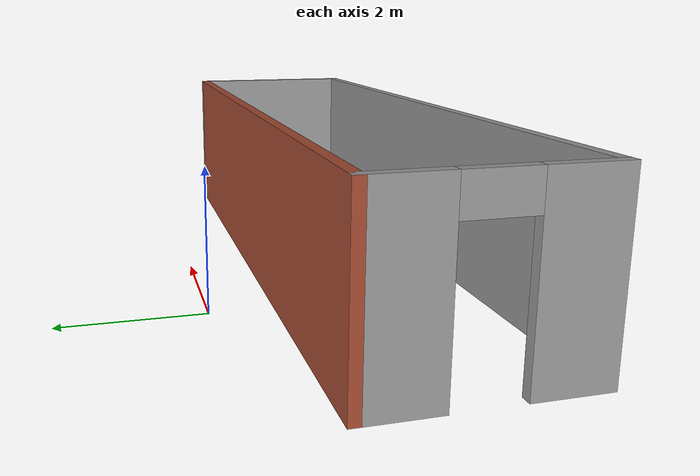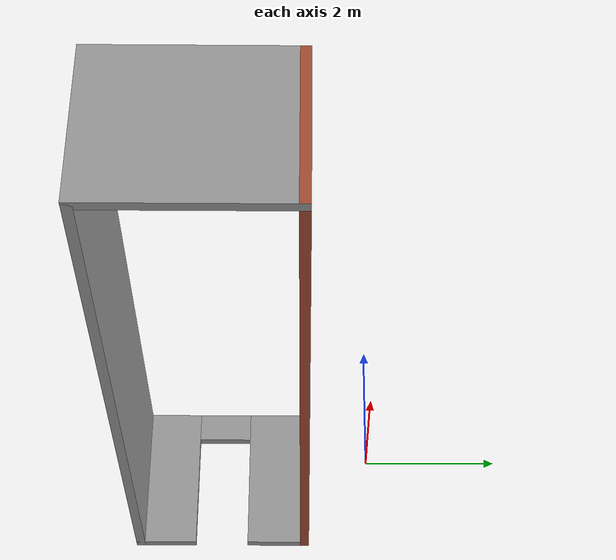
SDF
<?xml version='1.0'?>
<sdf version='1.7'>
  <model name='Mapa_Corredor'>
    <pose>1.815 -1.9425 0 0 -0 0</pose>
    <link name='Wall_0'>
      <pose>-4.925 -0.4425 0 0 -0 -1.5708</pose>
      <visual name='Wall_0_Visual_0'>
        <pose>-0.9675 0 1.25 0 -0 0</pose>
        <geometry>
          <box>
            <size>1.065 0.15 2.5</size>
          </box>
        </geometry>
        <material>
          <script>
            <uri>file://media/materials/scripts/gazebo.material</uri>
            <name>Gazebo/Grey</name>
          </script>
          <ambient>1 1 1 1</ambient>
        </material>
        <meta>
          <layer>0</layer>
        </meta>
      </visual>
      <collision name='Wall_0_Collision_0'>
        <geometry>
          <box>
            <size>1.065 0.15 2.5</size>
          </box>
        </geometry>
        <pose>-0.9675 0 1.25 0 -0 0</pose>
      </collision>
      <visual name='Wall_0_Visual_1'>
        <pose>0.9825 0 1.25 0 -0 0</pose>
        <geometry>
          <box>
            <size>1.035 0.15 2.5</size>
          </box>
        </geometry>
        <material>
          <script>
            <uri>file://media/materials/scripts/gazebo.material</uri>
            <name>Gazebo/Grey</name>
          </script>
          <ambient>1 1 1 1</ambient>
        </material>
        <meta>
          <layer>0</layer>
        </meta>
      </visual>
      <collision name='Wall_0_Collision_1'>
        <geometry>
          <box>
            <size>1.035 0.15 2.5</size>
          </box>
        </geometry>
        <pose>0.9825 0 1.25 0 -0 0</pose>
      </collision>
      <visual name='Wall_0_Visual_2'>
        <pose>0.015 0 2.25 0 -0 0</pose>
        <geometry>
          <box>
            <size>0.9 0.15 0.5</size>
          </box>
        </geometry>
        <material>
          <script>
            <uri>file://media/materials/scripts/gazebo.material</uri>
            <name>Gazebo/Grey</name>
          </script>
          <ambient>1 1 1 1</ambient>
        </material>
        <meta>
          <layer>0</layer>
        </meta>
      </visual>
      <collision name='Wall_0_Collision_2'>
        <geometry>
          <box>
            <size>0.9 0.15 0.5</size>
          </box>
        </geometry>
        <pose>0.015 0 2.25 0 -0 0</pose>
      </collision>
    </link>
    <link name='Wall_3'>
      <collision name='Wall_3_Collision'>
        <geometry>
          <box>
            <size>10 0.15 2.5</size>
          </box>
        </geometry>
        <pose>0 0 1.25 0 -0 0</pose>
      </collision>
      <visual name='Wall_3_Visual'>
        <pose>0 0 1.25 0 -0 0</pose>
        <geometry>
          <box>
            <size>10 0.15 2.5</size>
          </box>
        </geometry>
        <material>
          <script>
            <uri>file://media/materials/scripts/gazebo.material</uri>
            <name>Gazebo/Grey</name>
          </script>
          <ambient>1 1 1 1</ambient>
        </material>
        <meta>
          <layer>0</layer>
        </meta>
      </visual>
      <pose>0 -1.8675 0 0 -0 0</pose>
    </link>
    <link name='Wall_4'>
      <collision name='Wall_4_Collision'>
        <geometry>
          <box>
            <size>3 0.15 2.5</size>
          </box>
        </geometry>
        <pose>0 0 1.25 0 -0 0</pose>
      </collision>
      <visual name='Wall_4_Visual'>
        <pose>0 0 1.25 0 -0 0</pose>
        <geometry>
          <box>
            <size>3 0.15 2.5</size>
          </box>
        </geometry>
        <material>
          <script>
            <uri>file://media/materials/scripts/gazebo.material</uri>
            <name>Gazebo/Grey</name>
          </script>
          <ambient>1 1 1 1</ambient>
        </material>
        <meta>
          <layer>0</layer>
        </meta>
      </visual>
      <pose>4.925 -0.4425 0 0 -0 1.5708</pose>
    </link>
    <link name='Wall_5'>
      <collision name='Wall_5_Collision'>
        <geometry>
          <box>
            <size>10 0.15 2.5</size>
          </box>
        </geometry>
        <pose>0 0 1.25 0 -0 0</pose>
      </collision>
      <visual name='Wall_5_Visual'>
        <pose>0 0 1.25 0 -0 0</pose>
        <geometry>
          <box>
            <size>10 0.15 2.5</size>
          </box>
        </geometry>
        <material>
          <script>
            <uri>file://media/materials/scripts/gazebo.material</uri>
            <name>Gazebo/Bricks</name>
          </script>
          <ambient>1 1 1 1</ambient>
        </material>
        <meta>
          <layer>0</layer>
        </meta>
      </visual>
      <pose>0 0.9825 0 0 -0 3.14159</pose>
    </link>
    <static>1</static>
  </model>
</sdf>
